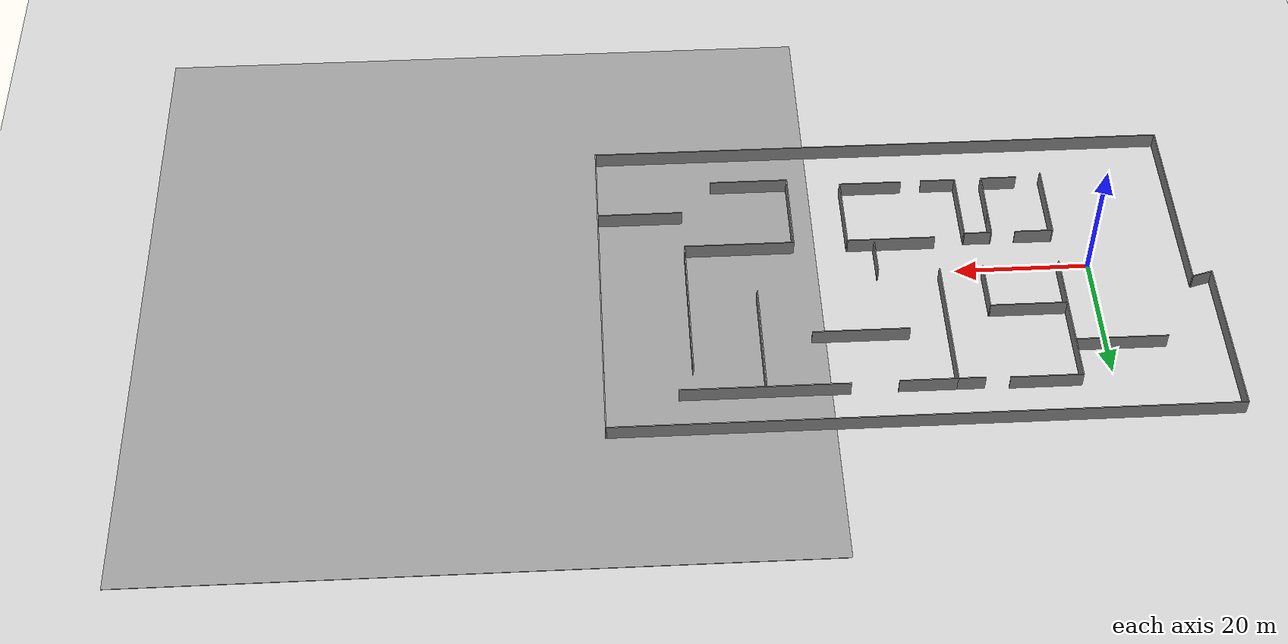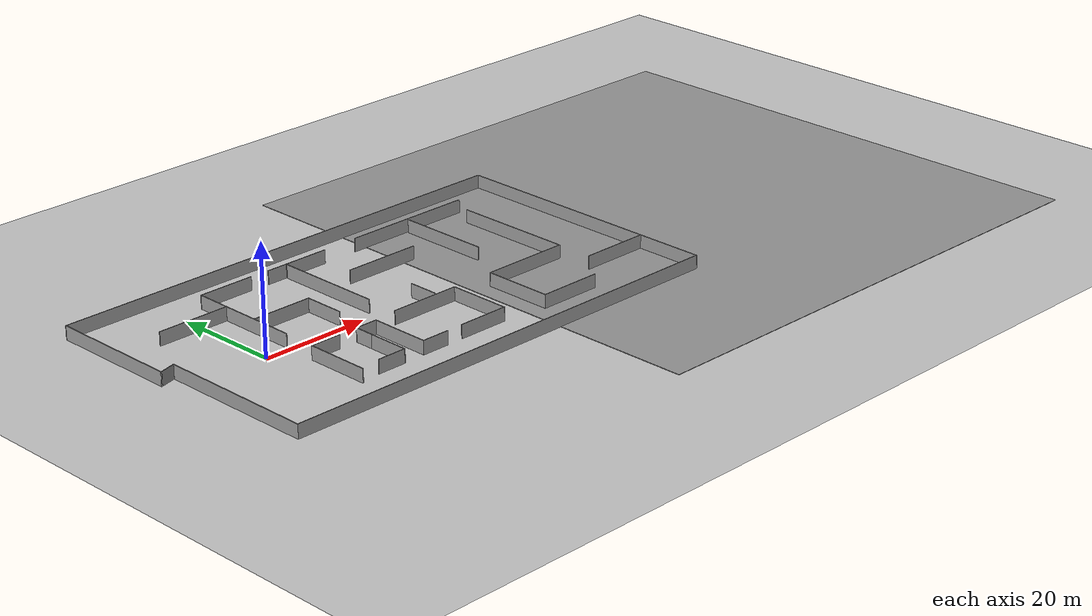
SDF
<sdf version="1.6">
 <world name="default">
  <light name="sun" type="directional">
   <pose>0 0 10 0 -0 0</pose>
   <diffuse>0.8 0.8 0.8 1</diffuse>
   <specular>0.2 0.2 0.2 1</specular>
   <attenuation>
    <range>1000</range>
    <constant>0.9</constant>
    <linear>0.01</linear>
    <quadratic>0.001</quadratic>
   </attenuation>
   <direction>-0.5 0.1 -0.9</direction>
  </light>
  <model name="ground_plane">
   <static>1</static>
   <link name="link">
    <collision name="collision">
     <geometry><plane><normal>0 0 1</normal><size>100 100</size></plane></geometry>
     <surface>
      <contact><collide_bitmask>65535</collide_bitmask></contact>
      <friction><ode><mu>100</mu><mu2>50</mu2></ode></friction>
     </surface>
    </collision>
    <visual name="visual">
     <cast_shadows>0</cast_shadows>
     <geometry><plane><normal>0 0 1</normal><size>100 100</size></plane></geometry>
     <material>
      <script><uri>file://media/materials/scripts/gazebo.material</uri><name>Gazebo/Grey</name></script>
     </material>
    </visual>
   </link>
  </model>
  <gravity>0 0 -9.8</gravity>
  <magnetic_field>6e-06 2.3e-05 -4.2e-05</magnetic_field>
  <atmosphere type="adiabatic"/>
  <physics name="default_physics" default="0" type="ode">
   <max_step_size>0.001</max_step_size>
   <real_time_factor>1</real_time_factor>
   <real_time_update_rate>1000</real_time_update_rate>
  </physics>
  <scene><ambient>0.4 0.4 0.4 1</ambient><background>0.7 0.7 0.7 1</background><shadows>1</shadows></scene>
  <audio><device>default</device></audio>
  <spherical_coordinates>
   <surface_model>EARTH_WGS84</surface_model>
   <latitude_deg>0</latitude_deg>
   <longitude_deg>0</longitude_deg>
   <elevation>0</elevation>
   <heading_deg>0</heading_deg>
  </spherical_coordinates>
  <model name="Untitled">
   <pose>27.7538 1.85746 0 0 -0 0</pose>
   <link name="Wall_0">
    <collision name="Wall_0_Collision">
     <geometry><box><size>29.5 0.15 2.5</size></box></geometry>
     <pose>0 0 1.25 0 -0 0</pose>
    </collision>
    <visual name="Wall_0_Visual">
     <pose>0 0 1.25 0 -0 0</pose>
     <geometry><box><size>29.5 0.15 2.5</size></box></geometry>
     <material>
      <script><uri>file://media/materials/scripts/gazebo.material</uri><name>Gazebo/Grey</name></script>
      <ambient>1 1 1 1</ambient>
     </material>
     <meta><layer>0</layer></meta>
    </visual>
    <pose>-42.1666 -11.75 0 0 -0 -1.5708</pose>
   </link>
   <link name="Wall_1">
    <collision name="Wall_1_Collision">
     <geometry><box><size>87.5 0.15 2.5</size></box></geometry>
     <pose>0 0 1.25 0 -0 0</pose>
    </collision>
    <visual name="Wall_1_Visual">
     <pose>0 0 1.25 0 -0 0</pose>
     <geometry><box><size>87.5 0.15 2.5</size></box></geometry>
     <material>
      <script><uri>file://media/materials/scripts/gazebo.material</uri><name>Gazebo/Grey</name></script>
      <ambient>1 1 1 1</ambient>
     </material>
     <meta><layer>0</layer></meta>
    </visual>
    <pose>1.50842 -26.425 0 0 -0 0</pose>
   </link>
   <link name="Wall_10">
    <collision name="Wall_10_Collision">
     <geometry><box><size>7.75 0.15 2.5</size></box></geometry>
     <pose>0 0 1.25 0 -0 0</pose>
    </collision>
    <visual name="Wall_10_Visual">
     <pose>0 0 1.25 0 -0 0</pose>
     <geometry><box><size>7.75 0.15 2.5</size></box></geometry>
     <material>
      <script><uri>file://media/materials/scripts/gazebo.material</uri><name>Gazebo/Grey</name></script>
      <ambient>1 1 1 1</ambient>
     </material>
     <meta><layer>0</layer></meta>
    </visual>
    <pose>-11.5381 3.15382 0 0 -0 -1.5708</pose>
   </link>
   <link name="Wall_12">
    <collision name="Wall_12_Collision">
     <geometry><box><size>20.5 0.15 2.5</size></box></geometry>
     <pose>0 0 1.25 0 -0 0</pose>
    </collision>
    <visual name="Wall_12_Visual">
     <pose>0 0 1.25 0 -0 0</pose>
     <geometry><box><size>20.5 0.15 2.5</size></box></geometry>
     <material>
      <script><uri>file://media/materials/scripts/gazebo.material</uri><name>Gazebo/Grey</name></script>
      <ambient>1 1 1 1</ambient>
     </material>
     <meta><layer>0</layer></meta>
    </visual>
    <pose>-5.0679 9.71675 0 0 -0 -1.5708</pose>
   </link>
   <link name="Wall_14">
    <collision name="Wall_14_Collision">
     <geometry><box><size>10.5 0.15 2.5</size></box></geometry>
     <pose>0 0 1.25 0 -0 0</pose>
    </collision>
    <visual name="Wall_14_Visual">
     <pose>0 0 1.25 0 -0 0</pose>
     <geometry><box><size>10.5 0.15 2.5</size></box></geometry>
     <material>
      <script><uri>file://media/materials/scripts/gazebo.material</uri><name>Gazebo/Grey</name></script>
      <ambient>1 1 1 1</ambient>
     </material>
     <meta><layer>0</layer></meta>
    </visual>
    <pose>-17.7131 20.38 0 0 -0 0</pose>
   </link>
   <link name="Wall_16">
    <collision name="Wall_16_Collision">
     <geometry><box><size>4 0.15 2.5</size></box></geometry>
     <pose>0 0 1.25 0 -0 0</pose>
    </collision>
    <visual name="Wall_16_Visual">
     <pose>0 0 1.25 0 -0 0</pose>
     <geometry><box><size>4 0.15 2.5</size></box></geometry>
     <material>
      <script><uri>file://media/materials/scripts/gazebo.material</uri><name>Gazebo/Grey</name></script>
      <ambient>1 1 1 1</ambient>
     </material>
     <meta><layer>0</layer></meta>
    </visual>
    <pose>-6.99289 20.2172 0 0 -0 3.14159</pose>
   </link>
   <link name="Wall_18">
    <collision name="Wall_18_Collision">
     <geometry><box><size>12 0.15 2.5</size></box></geometry>
     <pose>0 0 1.25 0 -0 0</pose>
    </collision>
    <visual name="Wall_18_Visual">
     <pose>0 0 1.25 0 -0 0</pose>
     <geometry><box><size>12 0.15 2.5</size></box></geometry>
     <material>
      <script><uri>file://media/materials/scripts/gazebo.material</uri><name>Gazebo/Grey</name></script>
      <ambient>1 1 1 1</ambient>
     </material>
     <meta><layer>0</layer></meta>
    </visual>
    <pose>-23.0038 -13.1969 0 0 -0 1.5708</pose>
   </link>
   <link name="Wall_19">
    <collision name="Wall_19_Collision">
     <geometry><box><size>5.75 0.15 2.5</size></box></geometry>
     <pose>0 0 1.25 0 -0 0</pose>
    </collision>
    <visual name="Wall_19_Visual">
     <pose>0 0 1.25 0 -0 0</pose>
     <geometry><box><size>5.75 0.15 2.5</size></box></geometry>
     <material>
      <script><uri>file://media/materials/scripts/gazebo.material</uri><name>Gazebo/Grey</name></script>
      <ambient>1 1 1 1</ambient>
     </material>
     <meta><layer>0</layer></meta>
    </visual>
    <pose>-20.2038 -7.27194 0 0 -0 0</pose>
   </link>
   <link name="Wall_2">
    <collision name="Wall_2_Collision">
     <geometry><box><size>53 0.15 2.5</size></box></geometry>
     <pose>0 0 1.25 0 -0 0</pose>
    </collision>
    <visual name="Wall_2_Visual">
     <pose>0 0 1.25 0 -0 0</pose>
     <geometry><box><size>53 0.15 2.5</size></box></geometry>
     <material>
      <script><uri>file://media/materials/scripts/gazebo.material</uri><name>Gazebo/Grey</name></script>
      <ambient>1 1 1 1</ambient>
     </material>
     <meta><layer>0</layer></meta>
    </visual>
    <pose>45.1834 -0 0 0 -0 1.5708</pose>
   </link>
   <link name="Wall_21">
    <collision name="Wall_21_Collision">
     <geometry><box><size>5.5 0.15 2.5</size></box></geometry>
     <pose>0 0 1.25 0 -0 0</pose>
    </collision>
    <visual name="Wall_21_Visual">
     <pose>0 0 1.25 0 -0 0</pose>
     <geometry><box><size>5.5 0.15 2.5</size></box></geometry>
     <material>
      <script><uri>file://media/materials/scripts/gazebo.material</uri><name>Gazebo/Grey</name></script>
      <ambient>1 1 1 1</ambient>
     </material>
     <meta><layer>0</layer></meta>
    </visual>
    <pose>-16.4371 -18.4851 0 0 -0 0</pose>
   </link>
   <link name="Wall_22">
    <collision name="Wall_22_Collision">
     <geometry><box><size>7.75 0.15 2.5</size></box></geometry>
     <pose>0 0 1.25 0 -0 0</pose>
    </collision>
    <visual name="Wall_22_Visual">
     <pose>0 0 1.25 0 -0 0</pose>
     <geometry><box><size>7.75 0.15 2.5</size></box></geometry>
     <material>
      <script><uri>file://media/materials/scripts/gazebo.material</uri><name>Gazebo/Grey</name></script>
      <ambient>1 1 1 1</ambient>
     </material>
     <meta><layer>0</layer></meta>
    </visual>
    <pose>-13.7621 -14.6851 0 0 -0 1.5708</pose>
   </link>
   <link name="Wall_23">
    <collision name="Wall_23_Collision">
     <geometry><box><size>3.75 0.15 2.5</size></box></geometry>
     <pose>0 0 1.25 0 -0 0</pose>
    </collision>
    <visual name="Wall_23_Visual">
     <pose>0 0 1.25 0 -0 0</pose>
     <geometry><box><size>3.75 0.15 2.5</size></box></geometry>
     <material>
      <script><uri>file://media/materials/scripts/gazebo.material</uri><name>Gazebo/Grey</name></script>
      <ambient>1 1 1 1</ambient>
     </material>
     <meta><layer>0</layer></meta>
    </visual>
    <pose>-13.7621 -9.08512 0 0 -0 1.5708</pose>
   </link>
   <link name="Wall_24">
    <collision name="Wall_24_Collision">
     <geometry><box><size>4.25 0.15 2.5</size></box></geometry>
     <pose>0 0 1.25 0 -0 0</pose>
    </collision>
    <visual name="Wall_24_Visual">
     <pose>0 0 1.25 0 -0 0</pose>
     <geometry><box><size>4.25 0.15 2.5</size></box></geometry>
     <material>
      <script><uri>file://media/materials/scripts/gazebo.material</uri><name>Gazebo/Grey</name></script>
      <ambient>1 1 1 1</ambient>
     </material>
     <meta><layer>0</layer></meta>
    </visual>
    <pose>-11.7121 -7.28512 0 0 -0 0</pose>
   </link>
   <link name="Wall_25">
    <collision name="Wall_25_Collision">
     <geometry><box><size>11.25 0.15 2.5</size></box></geometry>
     <pose>0 0 1.25 0 -0 0</pose>
    </collision>
    <visual name="Wall_25_Visual">
     <pose>0 0 1.25 0 -0 0</pose>
     <geometry><box><size>11.25 0.15 2.5</size></box></geometry>
     <material>
      <script><uri>file://media/materials/scripts/gazebo.material</uri><name>Gazebo/Grey</name></script>
      <ambient>1 1 1 1</ambient>
     </material>
     <meta><layer>0</layer></meta>
    </visual>
    <pose>-9.66214 -12.8351 0 0 -0 -1.5708</pose>
   </link>
   <link name="Wall_26">
    <collision name="Wall_26_Collision">
     <geometry><box><size>5.25 0.15 2.5</size></box></geometry>
     <pose>0 0 1.25 0 -0 0</pose>
    </collision>
    <visual name="Wall_26_Visual">
     <pose>0 0 1.25 0 -0 0</pose>
     <geometry><box><size>5.25 0.15 2.5</size></box></geometry>
     <material>
      <script><uri>file://media/materials/scripts/gazebo.material</uri><name>Gazebo/Grey</name></script>
      <ambient>1 1 1 1</ambient>
     </material>
     <meta><layer>0</layer></meta>
    </visual>
    <pose>-7.11214 -18.3851 0 0 -0 0</pose>
   </link>
   <link name="Wall_28">
    <collision name="Wall_28_Collision">
     <geometry><box><size>9.5 0.15 2.5</size></box></geometry>
     <pose>0 0 1.25 0 -0 0</pose>
    </collision>
    <visual name="Wall_28_Visual">
     <pose>0 0 1.25 0 -0 0</pose>
     <geometry><box><size>9.5 0.15 2.5</size></box></geometry>
     <material>
      <script><uri>file://media/materials/scripts/gazebo.material</uri><name>Gazebo/Grey</name></script>
      <ambient>1 1 1 1</ambient>
     </material>
     <meta><layer>0</layer></meta>
    </visual>
    <pose>3.32288 -18.3436 0 0 -0 0</pose>
   </link>
   <link name="Wall_29">
    <collision name="Wall_29_Collision">
     <geometry><box><size>11.75 0.15 2.5</size></box></geometry>
     <pose>0 0 1.25 0 -0 0</pose>
    </collision>
    <visual name="Wall_29_Visual">
     <pose>0 0 1.25 0 -0 0</pose>
     <geometry><box><size>11.75 0.15 2.5</size></box></geometry>
     <material>
      <script><uri>file://media/materials/scripts/gazebo.material</uri><name>Gazebo/Grey</name></script>
      <ambient>1 1 1 1</ambient>
     </material>
     <meta><layer>0</layer></meta>
    </visual>
    <pose>7.99788 -12.5436 0 0 -0 1.5708</pose>
   </link>
   <link name="Wall_3">
    <collision name="Wall_3_Collision">
     <geometry><box><size>90.5 0.15 2.5</size></box></geometry>
     <pose>0 0 1.25 0 -0 0</pose>
    </collision>
    <visual name="Wall_3_Visual">
     <pose>0 0 1.25 0 -0 0</pose>
     <geometry><box><size>90.5 0.15 2.5</size></box></geometry>
     <material>
      <script><uri>file://media/materials/scripts/gazebo.material</uri><name>Gazebo/Grey</name></script>
      <ambient>1 1 1 1</ambient>
     </material>
     <meta><layer>0</layer></meta>
    </visual>
    <pose>0.008425 26.425 0 0 -0 3.14159</pose>
   </link>
   <link name="Wall_30">
    <collision name="Wall_30_Collision">
     <geometry><box><size>13.25 0.15 2.5</size></box></geometry>
     <pose>0 0 1.25 0 -0 0</pose>
    </collision>
    <visual name="Wall_30_Visual">
     <pose>0 0 1.25 0 -0 0</pose>
     <geometry><box><size>13.25 0.15 2.5</size></box></geometry>
     <material>
      <script><uri>file://media/materials/scripts/gazebo.material</uri><name>Gazebo/Grey</name></script>
      <ambient>1 1 1 1</ambient>
     </material>
     <meta><layer>0</layer></meta>
    </visual>
    <pose>1.44788 -6.74361 0 0 -0 3.14159</pose>
   </link>
   <link name="Wall_32">
    <collision name="Wall_32_Collision">
     <geometry><box><size>5.5 0.15 2.5</size></box></geometry>
     <pose>0 0 1.25 0 -0 0</pose>
    </collision>
    <visual name="Wall_32_Visual">
     <pose>0 0 1.25 0 -0 0</pose>
     <geometry><box><size>5.5 0.15 2.5</size></box></geometry>
     <material>
      <script><uri>file://media/materials/scripts/gazebo.material</uri><name>Gazebo/Grey</name></script>
      <ambient>1 1 1 1</ambient>
     </material>
     <meta><layer>0</layer></meta>
    </visual>
    <pose>4.02634 -3.45319 0 0 -0 1.5708</pose>
   </link>
   <link name="Wall_34">
    <collision name="Wall_34_Collision">
     <geometry><box><size>8.5 0.15 2.5</size></box></geometry>
     <pose>0 0 1.25 0 -0 0</pose>
    </collision>
    <visual name="Wall_34_Visual">
     <pose>0 0 1.25 0 -0 0</pose>
     <geometry><box><size>8.5 0.15 2.5</size></box></geometry>
     <material>
      <script><uri>file://media/materials/scripts/gazebo.material</uri><name>Gazebo/Grey</name></script>
      <ambient>1 1 1 1</ambient>
     </material>
     <meta><layer>0</layer></meta>
    </visual>
    <pose>-0.892895 20.2172 0 0 -0 0</pose>
   </link>
   <link name="Wall_36">
    <collision name="Wall_36_Collision">
     <geometry><box><size>24.5 0.15 2.5</size></box></geometry>
     <pose>0 0 1.25 0 -0 0</pose>
    </collision>
    <visual name="Wall_36_Visual">
     <pose>0 0 1.25 0 -0 0</pose>
     <geometry><box><size>24.5 0.15 2.5</size></box></geometry>
     <material>
      <script><uri>file://media/materials/scripts/gazebo.material</uri><name>Gazebo/Grey</name></script>
      <ambient>1 1 1 1</ambient>
     </material>
     <meta><layer>0</layer></meta>
    </visual>
    <pose>22.4196 20.32 0 0 -0 0</pose>
   </link>
   <link name="Wall_38">
    <collision name="Wall_38_Collision">
     <geometry><box><size>17.5 0.15 2.5</size></box></geometry>
     <pose>0 0 1.25 0 -0 0</pose>
    </collision>
    <visual name="Wall_38_Visual">
     <pose>0 0 1.25 0 -0 0</pose>
     <geometry><box><size>17.5 0.15 2.5</size></box></geometry>
     <material>
      <script><uri>file://media/materials/scripts/gazebo.material</uri><name>Gazebo/Grey</name></script>
      <ambient>1 1 1 1</ambient>
     </material>
     <meta><layer>0</layer></meta>
    </visual>
    <pose>22.2223 11.2156 0 0 -0 1.5708</pose>
   </link>
   <link name="Wall_4">
    <collision name="Wall_4_Collision">
     <geometry><box><size>24.5 0.15 2.5</size></box></geometry>
     <pose>0 0 1.25 0 -0 0</pose>
    </collision>
    <visual name="Wall_4_Visual">
     <pose>0 0 1.25 0 -0 0</pose>
     <geometry><box><size>24.5 0.15 2.5</size></box></geometry>
     <material>
      <script><uri>file://media/materials/scripts/gazebo.material</uri><name>Gazebo/Grey</name></script>
      <ambient>1 1 1 1</ambient>
     </material>
     <meta><layer>0</layer></meta>
    </visual>
    <pose>-45.1666 14.25 0 0 -0 -1.5708</pose>
   </link>
   <link name="Wall_40">
    <collision name="Wall_40_Collision">
     <geometry><box><size>14.25 0.15 2.5</size></box></geometry>
     <pose>0 0 1.25 0 -0 0</pose>
    </collision>
    <visual name="Wall_40_Visual">
     <pose>0 0 1.25 0 -0 0</pose>
     <geometry><box><size>14.25 0.15 2.5</size></box></geometry>
     <material>
      <script><uri>file://media/materials/scripts/gazebo.material</uri><name>Gazebo/Grey</name></script>
      <ambient>1 1 1 1</ambient>
     </material>
     <meta><layer>0</layer></meta>
    </visual>
    <pose>7.74978 10.6817 0 0 -0 0</pose>
   </link>
   <link name="Wall_43">
    <collision name="Wall_43_Collision">
     <geometry><box><size>16.5 0.15 2.5</size></box></geometry>
     <pose>0 0 1.25 0 -0 0</pose>
    </collision>
    <visual name="Wall_43_Visual">
     <pose>0 0 1.25 0 -0 0</pose>
     <geometry><box><size>16.5 0.15 2.5</size></box></geometry>
     <material>
      <script><uri>file://media/materials/scripts/gazebo.material</uri><name>Gazebo/Grey</name></script>
      <ambient>1 1 1 1</ambient>
     </material>
     <meta><layer>0</layer></meta>
    </visual>
    <pose>24.2471 -6.77856 0 0 -0 3.14159</pose>
   </link>
   <link name="Wall_44">
    <collision name="Wall_44_Collision">
     <geometry><box><size>13 0.15 2.5</size></box></geometry>
     <pose>0 0 1.25 0 -0 0</pose>
    </collision>
    <visual name="Wall_44_Visual">
     <pose>0 0 1.25 0 -0 0</pose>
     <geometry><box><size>13 0.15 2.5</size></box></geometry>
     <material>
      <script><uri>file://media/materials/scripts/gazebo.material</uri><name>Gazebo/Grey</name></script>
      <ambient>1 1 1 1</ambient>
     </material>
     <meta><layer>0</layer></meta>
    </visual>
    <pose>16.0721 -13.2036 0 0 -0 -1.5708</pose>
   </link>
   <link name="Wall_45">
    <collision name="Wall_45_Collision">
     <geometry><box><size>11.75 0.15 2.5</size></box></geometry>
     <pose>0 0 1.25 0 -0 0</pose>
    </collision>
    <visual name="Wall_45_Visual">
     <pose>0 0 1.25 0 -0 0</pose>
     <geometry><box><size>11.75 0.15 2.5</size></box></geometry>
     <material>
      <script><uri>file://media/materials/scripts/gazebo.material</uri><name>Gazebo/Grey</name></script>
      <ambient>1 1 1 1</ambient>
     </material>
     <meta><layer>0</layer></meta>
    </visual>
    <pose>21.8721 -19.6286 0 0 -0 0</pose>
   </link>
   <link name="Wall_47">
    <collision name="Wall_47_Collision">
     <geometry><box><size>12.75 0.15 2.5</size></box></geometry>
     <pose>0 0 1.25 0 -0 0</pose>
    </collision>
    <visual name="Wall_47_Visual">
     <pose>0 0 1.25 0 -0 0</pose>
     <geometry><box><size>12.75 0.15 2.5</size></box></geometry>
     <material>
      <script><uri>file://media/materials/scripts/gazebo.material</uri><name>Gazebo/Grey</name></script>
      <ambient>1 1 1 1</ambient>
     </material>
     <meta><layer>0</layer></meta>
    </visual>
    <pose>38.8157 -13.6481 0 0 -0 0</pose>
   </link>
   <link name="Wall_49">
    <collision name="Wall_49_Collision">
     <geometry><box><size>22.5 0.15 2.5</size></box></geometry>
     <pose>0 0 1.25 0 -0 0</pose>
    </collision>
    <visual name="Wall_49_Visual">
     <pose>0 0 1.25 0 -0 0</pose>
     <geometry><box><size>22.5 0.15 2.5</size></box></geometry>
     <material>
      <script><uri>file://media/materials/scripts/gazebo.material</uri><name>Gazebo/Grey</name></script>
      <ambient>1 1 1 1</ambient>
     </material>
     <meta><layer>0</layer></meta>
    </visual>
    <pose>32.3905 4.65613 0 0 -0 1.5708</pose>
   </link>
   <link name="Wall_5">
    <collision name="Wall_5_Collision">
     <geometry><box><size>3.25 0.15 2.5</size></box></geometry>
     <pose>0 0 1.25 0 -0 0</pose>
    </collision>
    <visual name="Wall_5_Visual">
     <pose>0 0 1.25 0 -0 0</pose>
     <geometry><box><size>3.25 0.15 2.5</size></box></geometry>
     <material>
      <script><uri>file://media/materials/scripts/gazebo.material</uri><name>Gazebo/Grey</name></script>
      <ambient>1 1 1 1</ambient>
     </material>
     <meta><layer>0</layer></meta>
    </visual>
    <pose>-43.6694 2.47617 0 0 -0 0.261799</pose>
   </link>
   <link name="Wall_52">
    <collision name="Wall_52_Collision">
     <geometry><box><size>13.5 0.15 2.5</size></box></geometry>
     <pose>0 0 1.25 0 -0 0</pose>
    </collision>
    <visual name="Wall_52_Visual">
     <pose>0 0 1.25 0 -0 0</pose>
     <geometry><box><size>13.5 0.15 2.5</size></box></geometry>
     <material>
      <script><uri>file://media/materials/scripts/gazebo.material</uri><name>Gazebo/Grey</name></script>
      <ambient>1 1 1 1</ambient>
     </material>
     <meta><layer>0</layer></meta>
    </visual>
    <pose>-29.6183 13.8997 0 0 -0 0</pose>
   </link>
   <link name="Wall_7">
    <collision name="Wall_7_Collision">
     <geometry><box><size>21.5 0.15 2.5</size></box></geometry>
     <pose>0 0 1.25 0 -0 0</pose>
    </collision>
    <visual name="Wall_7_Visual">
     <pose>0 0 1.25 0 -0 0</pose>
     <geometry><box><size>21.5 0.15 2.5</size></box></geometry>
     <material>
      <script><uri>file://media/materials/scripts/gazebo.material</uri><name>Gazebo/Grey</name></script>
      <ambient>1 1 1 1</ambient>
     </material>
     <meta><layer>0</layer></meta>
    </visual>
    <pose>-22.8881 9.70497 0 0 -0 -1.5708</pose>
   </link>
   <link name="Wall_9">
    <collision name="Wall_9_Collision">
     <geometry><box><size>11.5 0.15 2.5</size></box></geometry>
     <pose>0 0 1.25 0 -0 0</pose>
    </collision>
    <visual name="Wall_9_Visual">
     <pose>0 0 1.25 0 -0 0</pose>
     <geometry><box><size>11.5 0.15 2.5</size></box></geometry>
     <material>
      <script><uri>file://media/materials/scripts/gazebo.material</uri><name>Gazebo/Grey</name></script>
      <ambient>1 1 1 1</ambient>
     </material>
     <meta><layer>0</layer></meta>
    </visual>
    <pose>-17.2131 6.95382 0 0 -0 0</pose>
   </link>
   <static>1</static>
  </model>
  <model name="ground_plane_0">
   <static>1</static>
   <link name="link">
    <collision name="collision">
     <geometry><plane><normal>0 0 1</normal><size>100 100</size></plane></geometry>
     <surface>
      <contact><collide_bitmask>65535</collide_bitmask></contact>
      <friction><ode><mu>100</mu><mu2>50</mu2></ode></friction>
     </surface>
    </collision>
    <visual name="visual">
     <cast_shadows>0</cast_shadows>
     <geometry><plane><normal>0 0 1</normal><size>100 100</size></plane></geometry>
     <material>
      <script><uri>file://media/materials/scripts/gazebo.material</uri><name>Gazebo/Grey</name></script>
     </material>
    </visual>
   </link>
   <pose>90.5231 -0.150629 0 0 -0 0</pose>
  </model>
 </world>
</sdf>
